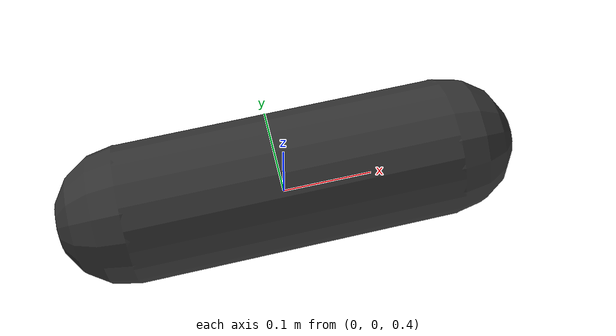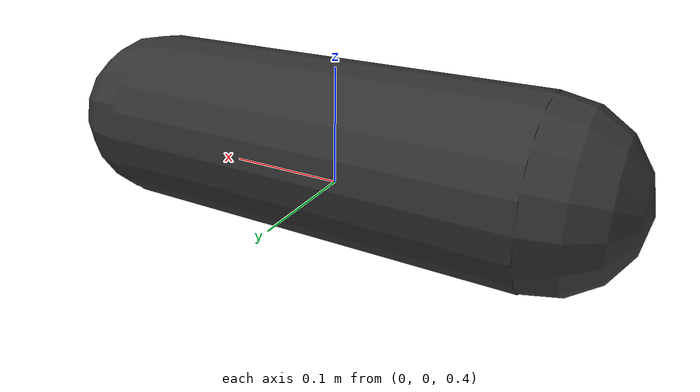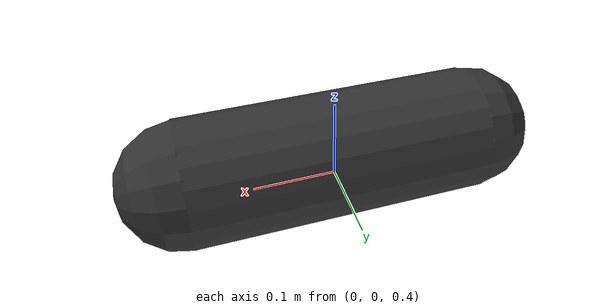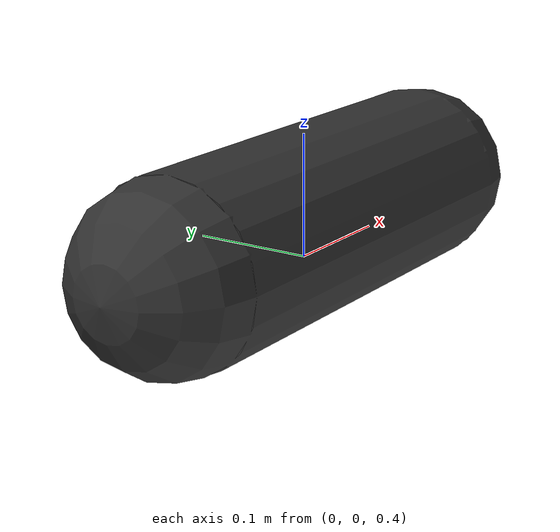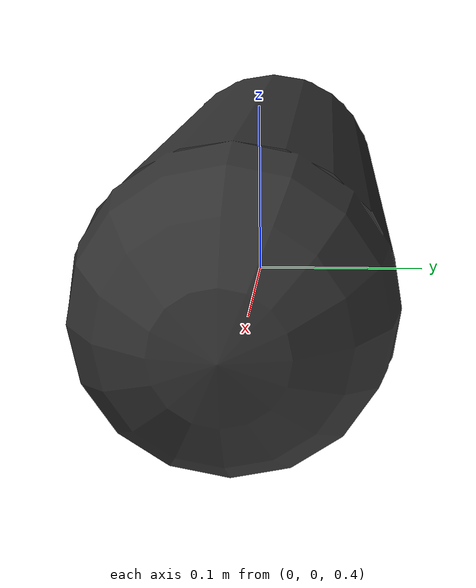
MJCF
<mujoco model="a1">
  <compiler angle="radian" meshdir="assets" texturedir="assets" autolimits="true"/>

	<option gravity="0 0 -9.81"/>

  <option cone="pyramidal" impratio="100"/>

  <size nstack="3000"/>

  <custom>
    <numeric data="10000" name="constraint_stiffness"/>
    <numeric data="10000" name="constraint_limit_stiffness"/>
    <numeric data="10" name="constraint_ang_damping"/>
    <numeric data="50" name="constraint_vel_damping"/>
    <numeric data="0" name="ang_damping"/>
    <numeric data="0" name="spring_mass_scale"/>
		<numeric data="1" name="spring_inertia_scale"/>
    <numeric data="10" name="matrix_inv_iterations"/>
    <numeric data="10" name="solver_maxls"/>
  </custom>

  <!-- Position control: -->

  <!-- Torque control: -->
  <default>
    <default class="a1">
      <geom friction="0.6" margin="0.001"/>
      <joint axis="0 1 0" damping="2" armature="0.01" frictionloss="0.2"/>
      <general gaintype="fixed" biastype="affine" ctrlrange="-2.0 2.0" gainprm="5" biasprm="0 0 0" gear="1 0 0 0 0 0" forcerange="-33.5 33.5"/>
      <default class="abduction">
        <joint axis="1 0 0" damping="1" range="-0.802851 0.802851"/>
        <general ctrlrange="-2.0 2.0"/>
      </default>
      <default class="hip">
        <joint range="-1.0472 4.18879"/>
        <general ctrlrange="-2.0 2.0"/>
      </default>
      <default class="knee">
        <joint range="-2.69653 -0.916298"/>
        <general ctrlrange="-2.0 2.0"/>
      </default>
      <default class="visual">
        <geom type="mesh" contype="0" conaffinity="0" group="2" material="dark"/>
      </default>
      <default class="collision">
        <geom group="3" type="capsule"/>
        <default class="hip_left">
          <geom size="0.04 0.001" quat="1 1 0 0" type="capsule" pos="0 0.055 0"/>
        </default>
        <default class="hip_right">
          <geom size="0.04 0.001" quat="1 1 0 0" type="capsule" pos="0 -0.055 0"/>
        </default>
        <default class="thigh1">
          <geom size="0.015" fromto="-0.02 0 0 -0.02 0 -0.16"/>
        </default>
        <default class="thigh2">
          <geom size="0.015" fromto="0 0 0 -0.02 0 -0.1"/>
        </default>
        <default class="thigh3">
          <geom size="0.015" fromto="-0.02 0 -0.16 0 0 -0.2"/>
        </default>
        <default class="calf1">
          <geom size="0.01" fromto="0 0 0 0.02 0 -0.13"/>
        </default>
        <default class="calf2">
          <geom size="0.01" fromto="0.02 0 -0.13 0 0 -0.2"/>
        </default>
        <default class="foot">
          <geom type="sphere" size="0.02" pos="0 0 -0.2" solimp="0.015 1 0.031" condim="6"
            friction="0.8 0.02 0.01"/>
        </default>
      </default>
    </default>
  </default>

  <asset>
    <material name="dark" specular="0" shininess="0.25" rgba="0.2 0.2 0.2 1"/>
    <mesh class="a1" file="calf.obj"/>
    <mesh class="a1" file="hip.obj"/>
    <mesh class="a1" file="thigh.obj"/>
    <mesh class="a1" file="thigh_mirror.obj"/>
    <mesh class="a1" file="trunk.obj"/>
  </asset>

  <worldbody>
    <light name="spotlight" mode="targetbodycom" target="trunk" pos="0 -1 2"/>
    <body name="trunk" pos="0 0 0.43" childclass="a1">
      <freejoint/>
      <inertial mass="4.713" pos="0 0.0041 -0.0005"
        fullinertia="0.0158533 0.0377999 0.0456542 -3.66e-05 -6.11e-05 -2.75e-05"/>
      <geom class="visual" type="capsule" size="0.075 0.175" pos="0.0039 0 0" quat="1 0 1 0"/>
      <geom class="collision" size="0.125 0.04 0.057" type="box"/>
      <geom class="collision" quat="1 0 1 0" pos="0 -0.04 0" size="0.058 0.001" type="capsule"/>
      <geom class="collision" quat="1 0 1 0" pos="0 +0.04 0" size="0.058 0.001" type="capsule"/>
      <geom class="collision" pos="0.25 0 0" size="0.005 0.06 0.05" type="box"/>
      <geom class="collision" pos="0.25 0.06 -0.01" size="0.009 0.035"/>
      <geom class="collision" pos="0.25 -0.06 -0.01" size="0.009 0.035"/>
      <geom class="collision" pos="0.25 0 -0.05" size="0.005 0.06" quat="1 1 0 0"/>
      <geom class="collision" pos="0.255 0 0.0355" size="0.021 0.052" quat="1 1 0 0"/>
      <body name="FR_hip" pos="0.183 -0.047 0">
        <inertial mass="0.696" pos="-0.003311 -0.000635 3.1e-05" quat="0.507528 0.506268 0.491507 0.494499"
          diaginertia="0.000807752 0.00055293 0.000468983"/>
        <joint class="abduction" name="FR_hip_joint"/>
        <geom class="hip_right"/>
        <body name="FR_thigh" pos="0 -0.08505 0">
          <inertial mass="1.013" pos="-0.003237 0.022327 -0.027326" quat="0.999125 -0.00256393 -0.0409531 -0.00806091"
            diaginertia="0.00555739 0.00513936 0.00133944"/>
          <joint class="hip" name="FR_thigh_joint"/>
          <geom class="thigh1"/>
          <geom class="thigh2"/>
          <geom class="thigh3"/>
          <body name="FR_calf" pos="0 0 -0.2">
            <inertial mass="0.226" pos="0.00472659 0 -0.131975" quat="0.706886 0.017653 0.017653 0.706886"
              diaginertia="0.00340344 0.00339393 3.54834e-05"/>
            <joint class="knee" name="FR_calf_joint"/>
            <geom class="calf1"/>
            <geom class="calf2"/>
            <geom class="foot"/>
          </body>
        </body>
      </body>
      <body name="FL_hip" pos="0.183 0.047 0">
        <inertial mass="0.696" pos="-0.003311 0.000635 3.1e-05" quat="0.494499 0.491507 0.506268 0.507528"
          diaginertia="0.000807752 0.00055293 0.000468983"/>
        <joint class="abduction" name="FL_hip_joint"/>
        <geom class="hip_left"/>
        <geom class="collision" size="0.04 0.001" pos="0 0.055 0" quat="1 1 0 0" type="capsule"/>
        <body name="FL_thigh" pos="0 0.08505 0">
          <inertial mass="1.013" pos="-0.003237 -0.022327 -0.027326" quat="0.999125 0.00256393 -0.0409531 0.00806091"
            diaginertia="0.00555739 0.00513936 0.00133944"/>
          <joint class="hip" name="FL_thigh_joint"/>
          <geom class="thigh1"/>
          <geom class="thigh2"/>
          <geom class="thigh3"/>
          <body name="FL_calf" pos="0 0 -0.2">
            <inertial mass="0.226" pos="0.00472659 0 -0.131975" quat="0.706886 0.017653 0.017653 0.706886"
              diaginertia="0.00340344 0.00339393 3.54834e-05"/>
            <joint class="knee" name="FL_calf_joint"/>
            <geom class="calf1"/>
            <geom class="calf2"/>
            <geom class="foot"/>
          </body>
        </body>
      </body>
      <body name="RR_hip" pos="-0.183 -0.047 0">
        <inertial mass="0.696" pos="0.003311 -0.000635 3.1e-05" quat="0.491507 0.494499 0.507528 0.506268"
          diaginertia="0.000807752 0.00055293 0.000468983"/>
        <joint class="abduction" name="RR_hip_joint"/>
        <geom class="hip_right"/>
        <body name="RR_thigh" pos="0 -0.08505 0">
          <inertial mass="1.013" pos="-0.003237 0.022327 -0.027326" quat="0.999125 -0.00256393 -0.0409531 -0.00806091"
          diaginertia="0.00555739 0.00513936 0.00133944"/>
          <joint class="hip" name="RR_thigh_joint"/>
          <geom class="thigh1"/>
          <geom class="thigh2"/>
          <geom class="thigh3"/>
          <body name="RR_calf" pos="0 0 -0.2">
            <inertial mass="0.226" pos="0.00472659 0 -0.131975" quat="0.706886 0.017653 0.017653 0.706886"
              diaginertia="0.00340344 0.00339393 3.54834e-05"/>
            <joint class="knee" name="RR_calf_joint"/>
            <geom class="calf1"/>
            <geom class="calf2"/>
            <geom class="foot"/>
          </body>
        </body>
      </body>
      <body name="RL_hip" pos="-0.183 0.047 0">
        <inertial mass="0.696" pos="0.003311 0.000635 3.1e-05" quat="0.506268 0.507528 0.494499 0.491507"
          diaginertia="0.000807752 0.00055293 0.000468983"/>
        <joint class="abduction" name="RL_hip_joint"/>
        <geom class="hip_left"/>
        <body name="RL_thigh" pos="0 0.08505 0">
          <inertial mass="1.013" pos="-0.003237 -0.022327 -0.027326" quat="0.999125 0.00256393 -0.0409531 0.00806091"
            diaginertia="0.00555739 0.00513936 0.00133944"/>
          <joint class="hip" name="RL_thigh_joint"/>
          <geom class="thigh1"/>
          <geom class="thigh2"/>
          <geom class="thigh3"/>
          <body name="RL_calf" pos="0 0 -0.2">
            <inertial mass="0.226" pos="0.00472659 0 -0.131975" quat="0.706886 0.017653 0.017653 0.706886"
              diaginertia="0.00340344 0.00339393 3.54834e-05"/>
            <joint class="knee" name="RL_calf_joint"/>
            <geom class="calf1"/>
            <geom class="calf2"/>
            <geom class="foot"/>
          </body>
        </body>
      </body>
    </body>
  </worldbody>

  <!-- Position controlled: -->

  <!-- Torque controlled: -->
  <actuator>
    <general class="abduction" name="FR_hip" joint="FR_hip_joint"/>
    <general class="hip" name="FR_thigh" joint="FR_thigh_joint"/>
    <general class="knee" name="FR_calf" joint="FR_calf_joint"/>
    <general class="abduction" name="FL_hip" joint="FL_hip_joint"/>
    <general class="hip" name="FL_thigh" joint="FL_thigh_joint"/>
    <general class="knee" name="FL_calf" joint="FL_calf_joint"/>
    <general class="abduction" name="RR_hip" joint="RR_hip_joint"/>
    <general class="hip" name="RR_thigh" joint="RR_thigh_joint"/>
    <general class="knee" name="RR_calf" joint="RR_calf_joint"/>
    <general class="abduction" name="RL_hip" joint="RL_hip_joint"/>
    <general class="hip" name="RL_thigh" joint="RL_thigh_joint"/>
    <general class="knee" name="RL_calf" joint="RL_calf_joint"/>
  </actuator>

  <keyframe>
    <key name="home" qpos="0 0 0.27 1 0 0 0 0 0.9 -1.8 0 0.9 -1.8 0 0.9 -1.8 0 0.9 -1.8"
      ctrl="0 0.9 -1.8 0 0.9 -1.8 0 0.9 -1.8 0 0.9 -1.8"/>
  </keyframe>
</mujoco>
